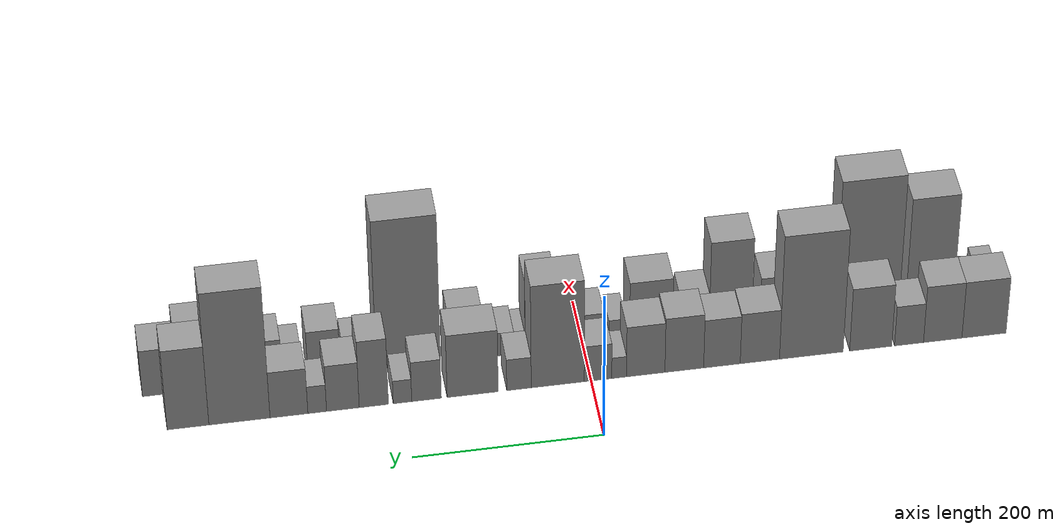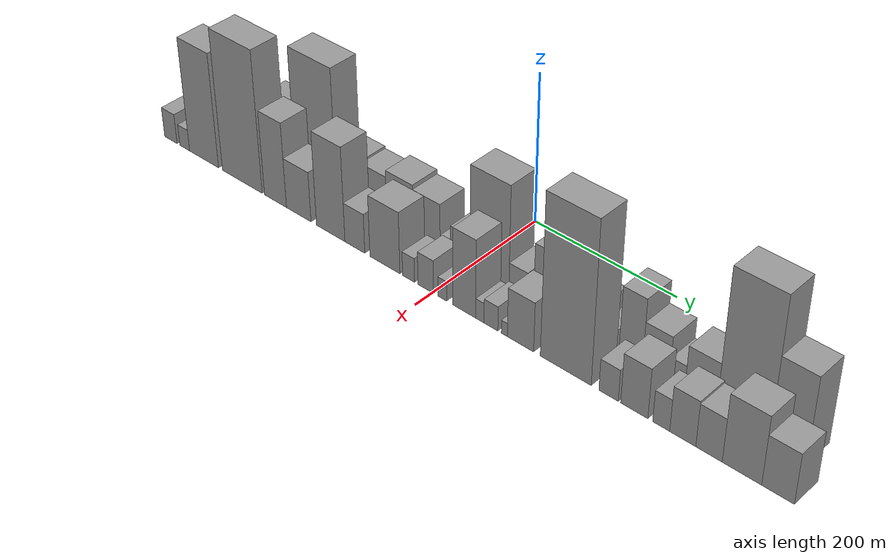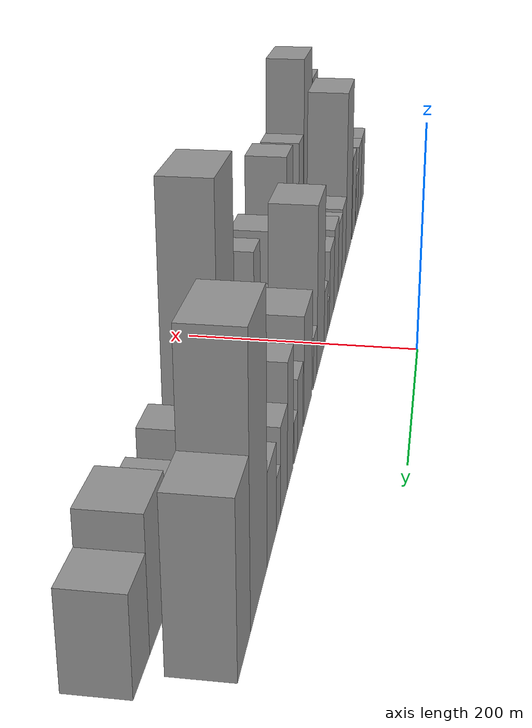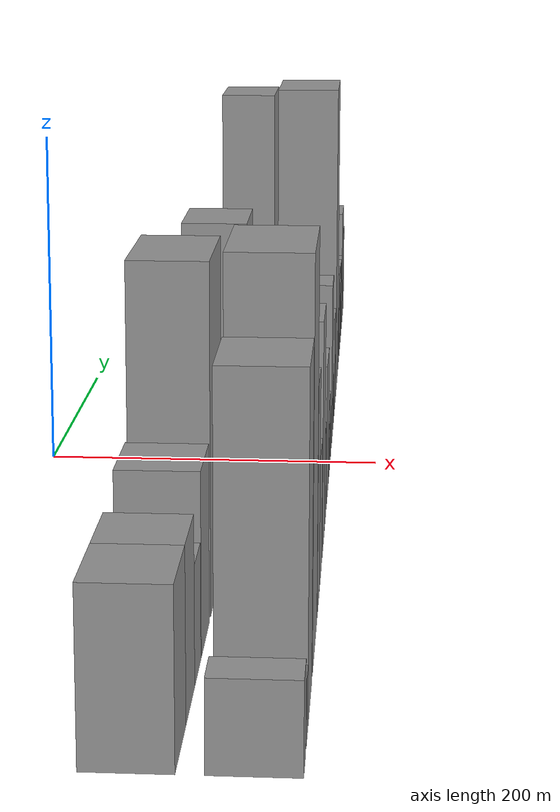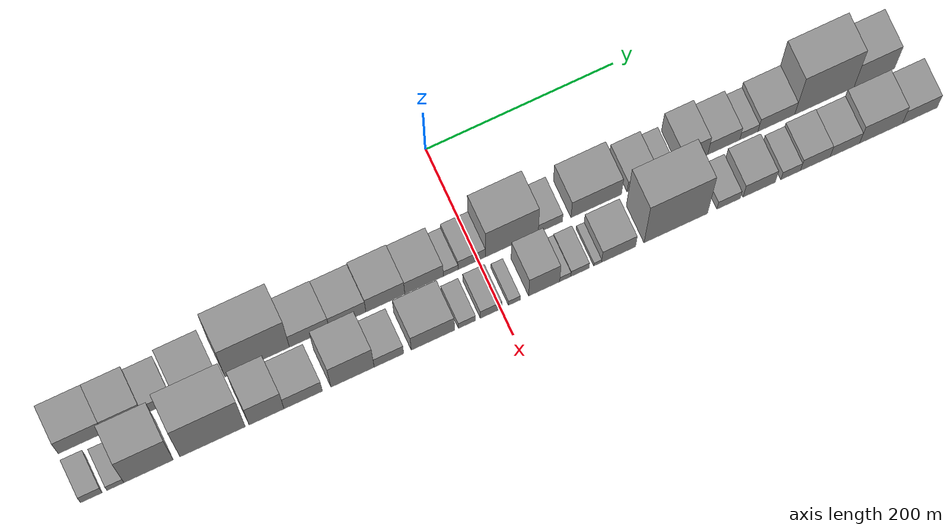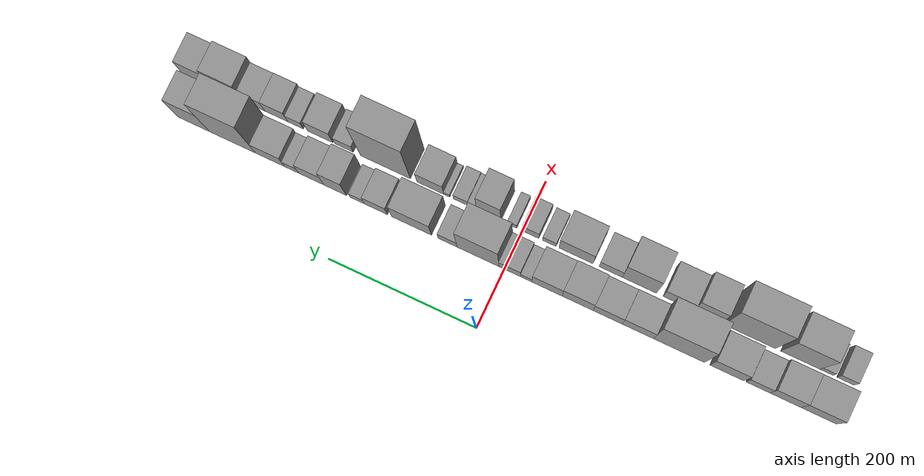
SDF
<sdf version="1.6">
 <world name="default">
  <scene>
   <sky><clouds><speed>12</speed></clouds></sky>
   <ambient>0.4 0.4 0.4 1</ambient>
   <background>0.7 0.7 0.7 1</background>
   <shadows>1</shadows>
  </scene>
  <gravity>0 0 -9.8066</gravity>
  <magnetic_field>6e-06 2.3e-05 -4.2e-05</magnetic_field>
  <physics default="0" name="default_physics" type="ode">
   <ode>
    <solver>
     <type>quick</type>
     <iters>10</iters>
     <sor>1.0</sor>
     <use_dynamic_moi_rescaling>0</use_dynamic_moi_rescaling>
    </solver>
    <constraints>
     <cfm>0</cfm>
     <erp>0.2</erp>
     <contact_max_correcting_vel>100</contact_max_correcting_vel>
     <contact_surface_layer>0.001</contact_surface_layer>
    </constraints>
   </ode>
   <max_step_size>0.004</max_step_size>
   <real_time_factor>1</real_time_factor>
   <real_time_update_rate>250</real_time_update_rate>
  </physics>
  <light name="sun" type="directional">
   <pose>0 0 10 0 0 0</pose>
   <diffuse>0.8 0.8 0.8 1</diffuse>
   <specular>0.2 0.2 0.2 1</specular>
   <attenuation>
    <range>1000</range>
    <constant>0.9</constant>
    <linear>0.01</linear>
    <quadratic>0.001</quadratic>
   </attenuation>
   <direction>-0.5 0.1 -0.9</direction>
  </light>
  <model name="building_1">
   <static>1</static>
   <pose>100.0000 -420.1427 0 0.000000 0.000000 0.000000</pose>
   <link name="link">
    <pose>0 0 40.50 0 0 0</pose>
    <collision name="collision"><geometry><box><size>40.0000 47.7146 81.0000</size></box></geometry></collision>
    <visual name="visual">
     <cast_shadows>0</cast_shadows>
     <geometry><box><size>40.0000 47.7146 81.0000</size></box></geometry>
     <material>
      <script>
       <uri>model://grey_wall/materials/scripts</uri>
       <uri>model://grey_wall/materials/textures</uri>
       <name>vrc/grey_wall</name>
      </script>
     </material>
    </visual>
   </link>
  </model>
  <model name="building_2">
   <static>1</static>
   <pose>100.0000 -375.5671 0 0.000000 0.000000 0.000000</pose>
   <link name="link">
    <pose>0 0 40.50 0 0 0</pose>
    <collision name="collision"><geometry><box><size>40.0000 41.4366 81.0000</size></box></geometry></collision>
    <visual name="visual">
     <cast_shadows>0</cast_shadows>
     <geometry><box><size>40.0000 41.4366 81.0000</size></box></geometry>
     <material>
      <script>
       <uri>model://grey_wall/materials/scripts</uri>
       <uri>model://grey_wall/materials/textures</uri>
       <name>vrc/grey_wall</name>
      </script>
     </material>
    </visual>
   </link>
  </model>
  <model name="building_3">
   <static>1</static>
   <pose>100.0000 -339.2263 0 0.000000 0.000000 0.000000</pose>
   <link name="link">
    <pose>0 0 28.50 0 0 0</pose>
    <collision name="collision"><geometry><box><size>40.0000 31.2451 57.0000</size></box></geometry></collision>
    <visual name="visual">
     <cast_shadows>0</cast_shadows>
     <geometry><box><size>40.0000 31.2451 57.0000</size></box></geometry>
     <material>
      <script>
       <uri>model://grey_wall/materials/scripts</uri>
       <uri>model://grey_wall/materials/textures</uri>
       <name>vrc/grey_wall</name>
      </script>
     </material>
    </visual>
   </link>
  </model>
  <model name="building_4">
   <static>1</static>
   <pose>100.0000 -297.9766 0 0.000000 0.000000 0.000000</pose>
   <link name="link">
    <pose>0 0 45.00 0 0 0</pose>
    <collision name="collision"><geometry><box><size>40.0000 45.2543 90.0000</size></box></geometry></collision>
    <visual name="visual">
     <cast_shadows>0</cast_shadows>
     <geometry><box><size>40.0000 45.2543 90.0000</size></box></geometry>
     <material>
      <script>
       <uri>model://grey_wall/materials/scripts</uri>
       <uri>model://grey_wall/materials/textures</uri>
       <name>vrc/grey_wall</name>
      </script>
     </material>
    </visual>
   </link>
  </model>
  <model name="building_5">
   <static>1</static>
   <pose>100.0000 -234.2413 0 0.000000 0.000000 0.000000</pose>
   <link name="link">
    <pose>0 0 88.50 0 0 0</pose>
    <collision name="collision"><geometry><box><size>40.0000 68.2162 177.0000</size></box></geometry></collision>
    <visual name="visual">
     <cast_shadows>0</cast_shadows>
     <geometry><box><size>40.0000 68.2162 177.0000</size></box></geometry>
     <material>
      <script>
       <uri>model://grey_wall/materials/scripts</uri>
       <uri>model://grey_wall/materials/textures</uri>
       <name>vrc/grey_wall</name>
      </script>
     </material>
    </visual>
   </link>
  </model>
  <model name="building_6">
   <static>1</static>
   <pose>100.0000 -179.1174 0 0.000000 0.000000 0.000000</pose>
   <link name="link">
    <pose>0 0 36.00 0 0 0</pose>
    <collision name="collision"><geometry><box><size>40.0000 42.0318 72.0000</size></box></geometry></collision>
    <visual name="visual">
     <cast_shadows>0</cast_shadows>
     <geometry><box><size>40.0000 42.0318 72.0000</size></box></geometry>
     <material>
      <script>
       <uri>model://grey_wall/materials/scripts</uri>
       <uri>model://grey_wall/materials/textures</uri>
       <name>vrc/grey_wall</name>
      </script>
     </material>
    </visual>
   </link>
  </model>
  <model name="building_7">
   <static>1</static>
   <pose>100.0000 -138.6093 0 0.000000 0.000000 0.000000</pose>
   <link name="link">
    <pose>0 0 34.50 0 0 0</pose>
    <collision name="collision"><geometry><box><size>40.0000 38.9844 69.0000</size></box></geometry></collision>
    <visual name="visual">
     <cast_shadows>0</cast_shadows>
     <geometry><box><size>40.0000 38.9844 69.0000</size></box></geometry>
     <material>
      <script>
       <uri>model://grey_wall/materials/scripts</uri>
       <uri>model://grey_wall/materials/textures</uri>
       <name>vrc/grey_wall</name>
      </script>
     </material>
    </visual>
   </link>
  </model>
  <model name="building_8">
   <static>1</static>
   <pose>100.0000 -98.5088 0 0.000000 0.000000 0.000000</pose>
   <link name="link">
    <pose>0 0 39.00 0 0 0</pose>
    <collision name="collision"><geometry><box><size>40.0000 41.2166 78.0000</size></box></geometry></collision>
    <visual name="visual">
     <cast_shadows>0</cast_shadows>
     <geometry><box><size>40.0000 41.2166 78.0000</size></box></geometry>
     <material>
      <script>
       <uri>model://grey_wall/materials/scripts</uri>
       <uri>model://grey_wall/materials/textures</uri>
       <name>vrc/grey_wall</name>
      </script>
     </material>
    </visual>
   </link>
  </model>
  <model name="building_9">
   <static>1</static>
   <pose>100.0000 -57.4360 0 0.000000 0.000000 0.000000</pose>
   <link name="link">
    <pose>0 0 36.00 0 0 0</pose>
    <collision name="collision"><geometry><box><size>40.0000 40.9290 72.0000</size></box></geometry></collision>
    <visual name="visual">
     <cast_shadows>0</cast_shadows>
     <geometry><box><size>40.0000 40.9290 72.0000</size></box></geometry>
     <material>
      <script>
       <uri>model://grey_wall/materials/scripts</uri>
       <uri>model://grey_wall/materials/textures</uri>
       <name>vrc/grey_wall</name>
      </script>
     </material>
    </visual>
   </link>
  </model>
  <model name="building_10">
   <static>1</static>
   <pose>100.0000 -29.1819 0 0.000000 0.000000 0.000000</pose>
   <link name="link">
    <pose>0 0 15.00 0 0 0</pose>
    <collision name="collision"><geometry><box><size>40.0000 15.5792 30.0000</size></box></geometry></collision>
    <visual name="visual">
     <cast_shadows>0</cast_shadows>
     <geometry><box><size>40.0000 15.5792 30.0000</size></box></geometry>
     <material>
      <script>
       <uri>model://grey_wall/materials/scripts</uri>
       <uri>model://grey_wall/materials/textures</uri>
       <name>vrc/grey_wall</name>
      </script>
     </material>
    </visual>
   </link>
  </model>
  <model name="building_11">
   <static>1</static>
   <pose>100.0000 -6.8319 0 0.000000 0.000000 0.000000</pose>
   <link name="link">
    <pose>0 0 25.50 0 0 0</pose>
    <collision name="collision"><geometry><box><size>40.0000 29.1208 51.0000</size></box></geometry></collision>
    <visual name="visual">
     <cast_shadows>0</cast_shadows>
     <geometry><box><size>40.0000 29.1208 51.0000</size></box></geometry>
     <material>
      <script>
       <uri>model://grey_wall/materials/scripts</uri>
       <uri>model://grey_wall/materials/textures</uri>
       <name>vrc/grey_wall</name>
      </script>
     </material>
    </visual>
   </link>
  </model>
  <model name="building_12">
   <static>1</static>
   <pose>100.0000 35.7936 0 0.000000 0.000000 0.000000</pose>
   <link name="link">
    <pose>0 0 73.50 0 0 0</pose>
    <collision name="collision"><geometry><box><size>40.0000 56.1301 147.0000</size></box></geometry></collision>
    <visual name="visual">
     <cast_shadows>0</cast_shadows>
     <geometry><box><size>40.0000 56.1301 147.0000</size></box></geometry>
     <material>
      <script>
       <uri>model://grey_wall/materials/scripts</uri>
       <uri>model://grey_wall/materials/textures</uri>
       <name>vrc/grey_wall</name>
      </script>
     </material>
    </visual>
   </link>
  </model>
  <model name="building_13">
   <static>1</static>
   <pose>100.0000 76.7831 0 0.000000 0.000000 0.000000</pose>
   <link name="link">
    <pose>0 0 22.50 0 0 0</pose>
    <collision name="collision"><geometry><box><size>40.0000 25.8488 45.0000</size></box></geometry></collision>
    <visual name="visual">
     <cast_shadows>0</cast_shadows>
     <geometry><box><size>40.0000 25.8488 45.0000</size></box></geometry>
     <material>
      <script>
       <uri>model://grey_wall/materials/scripts</uri>
       <uri>model://grey_wall/materials/textures</uri>
       <name>vrc/grey_wall</name>
      </script>
     </material>
    </visual>
   </link>
  </model>
  <model name="building_14">
   <static>1</static>
   <pose>100.0000 125.6240 0 0.000000 0.000000 0.000000</pose>
   <link name="link">
    <pose>0 0 45.00 0 0 0</pose>
    <collision name="collision"><geometry><box><size>40.0000 53.8330 90.0000</size></box></geometry></collision>
    <visual name="visual">
     <cast_shadows>0</cast_shadows>
     <geometry><box><size>40.0000 53.8330 90.0000</size></box></geometry>
     <material>
      <script>
       <uri>model://grey_wall/materials/scripts</uri>
       <uri>model://grey_wall/materials/textures</uri>
       <name>vrc/grey_wall</name>
      </script>
     </material>
    </visual>
   </link>
  </model>
  <model name="building_15">
   <static>1</static>
   <pose>100.0000 174.1164 0 0.000000 0.000000 0.000000</pose>
   <link name="link">
    <pose>0 0 28.50 0 0 0</pose>
    <collision name="collision"><geometry><box><size>40.0000 31.1519 57.0000</size></box></geometry></collision>
    <visual name="visual">
     <cast_shadows>0</cast_shadows>
     <geometry><box><size>40.0000 31.1519 57.0000</size></box></geometry>
     <material>
      <script>
       <uri>model://grey_wall/materials/scripts</uri>
       <uri>model://grey_wall/materials/textures</uri>
       <name>vrc/grey_wall</name>
      </script>
     </material>
    </visual>
   </link>
  </model>
  <model name="building_16">
   <static>1</static>
   <pose>100.0000 199.3992 0 0.000000 0.000000 0.000000</pose>
   <link name="link">
    <pose>0 0 16.50 0 0 0</pose>
    <collision name="collision"><geometry><box><size>40.0000 19.4137 33.0000</size></box></geometry></collision>
    <visual name="visual">
     <cast_shadows>0</cast_shadows>
     <geometry><box><size>40.0000 19.4137 33.0000</size></box></geometry>
     <material>
      <script>
       <uri>model://grey_wall/materials/scripts</uri>
       <uri>model://grey_wall/materials/textures</uri>
       <name>vrc/grey_wall</name>
      </script>
     </material>
    </visual>
   </link>
  </model>
  <model name="building_17">
   <static>1</static>
   <pose>100.0000 229.4084 0 0.000000 0.000000 0.000000</pose>
   <link name="link">
    <pose>0 0 48.00 0 0 0</pose>
    <collision name="collision"><geometry><box><size>40.0000 30.6047 96.0000</size></box></geometry></collision>
    <visual name="visual">
     <cast_shadows>0</cast_shadows>
     <geometry><box><size>40.0000 30.6047 96.0000</size></box></geometry>
     <material>
      <script>
       <uri>model://grey_wall/materials/scripts</uri>
       <uri>model://grey_wall/materials/textures</uri>
       <name>vrc/grey_wall</name>
      </script>
     </material>
    </visual>
   </link>
  </model>
  <model name="building_18">
   <static>1</static>
   <pose>100.0000 261.8098 0 0.000000 0.000000 0.000000</pose>
   <link name="link">
    <pose>0 0 33.00 0 0 0</pose>
    <collision name="collision"><geometry><box><size>40.0000 34.1980 66.0000</size></box></geometry></collision>
    <visual name="visual">
     <cast_shadows>0</cast_shadows>
     <geometry><box><size>40.0000 34.1980 66.0000</size></box></geometry>
     <material>
      <script>
       <uri>model://grey_wall/materials/scripts</uri>
       <uri>model://grey_wall/materials/textures</uri>
       <name>vrc/grey_wall</name>
      </script>
     </material>
    </visual>
   </link>
  </model>
  <model name="building_19">
   <static>1</static>
   <pose>100.0000 288.6659 0 0.000000 0.000000 0.000000</pose>
   <link name="link">
    <pose>0 0 19.50 0 0 0</pose>
    <collision name="collision"><geometry><box><size>40.0000 19.5142 39.0000</size></box></geometry></collision>
    <visual name="visual">
     <cast_shadows>0</cast_shadows>
     <geometry><box><size>40.0000 19.5142 39.0000</size></box></geometry>
     <material>
      <script>
       <uri>model://grey_wall/materials/scripts</uri>
       <uri>model://grey_wall/materials/textures</uri>
       <name>vrc/grey_wall</name>
      </script>
     </material>
    </visual>
   </link>
  </model>
  <model name="building_20">
   <static>1</static>
   <pose>100.0000 318.1490 0 0.000000 0.000000 0.000000</pose>
   <link name="link">
    <pose>0 0 33.00 0 0 0</pose>
    <collision name="collision"><geometry><box><size>40.0000 39.4521 66.0000</size></box></geometry></collision>
    <visual name="visual">
     <cast_shadows>0</cast_shadows>
     <geometry><box><size>40.0000 39.4521 66.0000</size></box></geometry>
     <material>
      <script>
       <uri>model://grey_wall/materials/scripts</uri>
       <uri>model://grey_wall/materials/textures</uri>
       <name>vrc/grey_wall</name>
      </script>
     </material>
    </visual>
   </link>
  </model>
  <model name="building_21">
   <static>1</static>
   <pose>100.0000 369.6639 0 0.000000 0.000000 0.000000</pose>
   <link name="link">
    <pose>0 0 94.50 0 0 0</pose>
    <collision name="collision"><geometry><box><size>40.0000 63.5777 189.0000</size></box></geometry></collision>
    <visual name="visual">
     <cast_shadows>0</cast_shadows>
     <geometry><box><size>40.0000 63.5777 189.0000</size></box></geometry>
     <material>
      <script>
       <uri>model://grey_wall/materials/scripts</uri>
       <uri>model://grey_wall/materials/textures</uri>
       <name>vrc/grey_wall</name>
      </script>
     </material>
    </visual>
   </link>
  </model>
  <model name="building_22">
   <static>1</static>
   <pose>100.0000 423.1620 0 0.000000 0.000000 0.000000</pose>
   <link name="link">
    <pose>0 0 57.00 0 0 0</pose>
    <collision name="collision"><geometry><box><size>40.0000 43.4184 114.0000</size></box></geometry></collision>
    <visual name="visual">
     <cast_shadows>0</cast_shadows>
     <geometry><box><size>40.0000 43.4184 114.0000</size></box></geometry>
     <material>
      <script>
       <uri>model://grey_wall/materials/scripts</uri>
       <uri>model://grey_wall/materials/textures</uri>
       <name>vrc/grey_wall</name>
      </script>
     </material>
    </visual>
   </link>
  </model>
  <model name="building_23">
   <static>1</static>
   <pose>152.0000 -432.6067 0 0.000000 0.000000 0.000000</pose>
   <link name="link">
    <pose>0 0 21.00 0 0 0</pose>
    <collision name="collision"><geometry><box><size>40.0000 22.7866 42.0000</size></box></geometry></collision>
    <visual name="visual">
     <cast_shadows>0</cast_shadows>
     <geometry><box><size>40.0000 22.7866 42.0000</size></box></geometry>
     <material>
      <script>
       <uri>model://grey_wall/materials/scripts</uri>
       <uri>model://grey_wall/materials/textures</uri>
       <name>vrc/grey_wall</name>
      </script>
     </material>
    </visual>
   </link>
  </model>
  <model name="building_24">
   <static>1</static>
   <pose>152.0000 -407.3194 0 0.000000 0.000000 0.000000</pose>
   <link name="link">
    <pose>0 0 15.00 0 0 0</pose>
    <collision name="collision"><geometry><box><size>40.0000 17.7880 30.0000</size></box></geometry></collision>
    <visual name="visual">
     <cast_shadows>0</cast_shadows>
     <geometry><box><size>40.0000 17.7880 30.0000</size></box></geometry>
     <material>
      <script>
       <uri>model://grey_wall/materials/scripts</uri>
       <uri>model://grey_wall/materials/textures</uri>
       <name>vrc/grey_wall</name>
      </script>
     </material>
    </visual>
   </link>
  </model>
  <model name="building_25">
   <static>1</static>
   <pose>152.0000 -372.4375 0 0.000000 0.000000 0.000000</pose>
   <link name="link">
    <pose>0 0 79.50 0 0 0</pose>
    <collision name="collision"><geometry><box><size>40.0000 51.9756 159.0000</size></box></geometry></collision>
    <visual name="visual">
     <cast_shadows>0</cast_shadows>
     <geometry><box><size>40.0000 51.9756 159.0000</size></box></geometry>
     <material>
      <script>
       <uri>model://grey_wall/materials/scripts</uri>
       <uri>model://grey_wall/materials/textures</uri>
       <name>vrc/grey_wall</name>
      </script>
     </material>
    </visual>
   </link>
  </model>
  <model name="building_26">
   <static>1</static>
   <pose>152.0000 -305.0122 0 0.000000 0.000000 0.000000</pose>
   <link name="link">
    <pose>0 0 97.50 0 0 0</pose>
    <collision name="collision"><geometry><box><size>40.0000 68.8751 195.0000</size></box></geometry></collision>
    <visual name="visual">
     <cast_shadows>0</cast_shadows>
     <geometry><box><size>40.0000 68.8751 195.0000</size></box></geometry>
     <material>
      <script>
       <uri>model://grey_wall/materials/scripts</uri>
       <uri>model://grey_wall/materials/textures</uri>
       <name>vrc/grey_wall</name>
      </script>
     </material>
    </visual>
   </link>
  </model>
  <model name="building_27">
   <static>1</static>
   <pose>152.0000 -248.1202 0 0.000000 0.000000 0.000000</pose>
   <link name="link">
    <pose>0 0 58.50 0 0 0</pose>
    <collision name="collision"><geometry><box><size>40.0000 36.9089 117.0000</size></box></geometry></collision>
    <visual name="visual">
     <cast_shadows>0</cast_shadows>
     <geometry><box><size>40.0000 36.9089 117.0000</size></box></geometry>
     <material>
      <script>
       <uri>model://grey_wall/materials/scripts</uri>
       <uri>model://grey_wall/materials/textures</uri>
       <name>vrc/grey_wall</name>
      </script>
     </material>
    </visual>
   </link>
  </model>
  <model name="building_28">
   <static>1</static>
   <pose>152.0000 -209.4073 0 0.000000 0.000000 0.000000</pose>
   <link name="link">
    <pose>0 0 34.50 0 0 0</pose>
    <collision name="collision"><geometry><box><size>40.0000 40.5168 69.0000</size></box></geometry></collision>
    <visual name="visual">
     <cast_shadows>0</cast_shadows>
     <geometry><box><size>40.0000 40.5168 69.0000</size></box></geometry>
     <material>
      <script>
       <uri>model://grey_wall/materials/scripts</uri>
       <uri>model://grey_wall/materials/textures</uri>
       <name>vrc/grey_wall</name>
      </script>
     </material>
    </visual>
   </link>
  </model>
  <model name="building_29">
   <static>1</static>
   <pose>152.0000 -157.2756 0 0.000000 0.000000 0.000000</pose>
   <link name="link">
    <pose>0 0 64.50 0 0 0</pose>
    <collision name="collision"><geometry><box><size>40.0000 45.7466 129.0000</size></box></geometry></collision>
    <visual name="visual">
     <cast_shadows>0</cast_shadows>
     <geometry><box><size>40.0000 45.7466 129.0000</size></box></geometry>
     <material>
      <script>
       <uri>model://grey_wall/materials/scripts</uri>
       <uri>model://grey_wall/materials/textures</uri>
       <name>vrc/grey_wall</name>
      </script>
     </material>
    </visual>
   </link>
  </model>
  <model name="building_30">
   <static>1</static>
   <pose>152.0000 -118.7785 0 0.000000 0.000000 0.000000</pose>
   <link name="link">
    <pose>0 0 27.00 0 0 0</pose>
    <collision name="collision"><geometry><box><size>40.0000 31.2476 54.0000</size></box></geometry></collision>
    <visual name="visual">
     <cast_shadows>0</cast_shadows>
     <geometry><box><size>40.0000 31.2476 54.0000</size></box></geometry>
     <material>
      <script>
       <uri>model://grey_wall/materials/scripts</uri>
       <uri>model://grey_wall/materials/textures</uri>
       <name>vrc/grey_wall</name>
      </script>
     </material>
    </visual>
   </link>
  </model>
  <model name="building_31">
   <static>1</static>
   <pose>152.0000 -72.1550 0 0.000000 0.000000 0.000000</pose>
   <link name="link">
    <pose>0 0 42.00 0 0 0</pose>
    <collision name="collision"><geometry><box><size>40.0000 45.9994 84.0000</size></box></geometry></collision>
    <visual name="visual">
     <cast_shadows>0</cast_shadows>
     <geometry><box><size>40.0000 45.9994 84.0000</size></box></geometry>
     <material>
      <script>
       <uri>model://grey_wall/materials/scripts</uri>
       <uri>model://grey_wall/materials/textures</uri>
       <name>vrc/grey_wall</name>
      </script>
     </material>
    </visual>
   </link>
  </model>
  <model name="building_32">
   <static>1</static>
   <pose>152.0000 -36.0433 0 0.000000 0.000000 0.000000</pose>
   <link name="link">
    <pose>0 0 16.50 0 0 0</pose>
    <collision name="collision"><geometry><box><size>40.0000 18.2240 33.0000</size></box></geometry></collision>
    <visual name="visual">
     <cast_shadows>0</cast_shadows>
     <geometry><box><size>40.0000 18.2240 33.0000</size></box></geometry>
     <material>
      <script>
       <uri>model://grey_wall/materials/scripts</uri>
       <uri>model://grey_wall/materials/textures</uri>
       <name>vrc/grey_wall</name>
      </script>
     </material>
    </visual>
   </link>
  </model>
  <model name="building_33">
   <static>1</static>
   <pose>152.0000 -10.4829 0 0.000000 0.000000 0.000000</pose>
   <link name="link">
    <pose>0 0 22.50 0 0 0</pose>
    <collision name="collision"><geometry><box><size>40.0000 22.8967 45.0000</size></box></geometry></collision>
    <visual name="visual">
     <cast_shadows>0</cast_shadows>
     <geometry><box><size>40.0000 22.8967 45.0000</size></box></geometry>
     <material>
      <script>
       <uri>model://grey_wall/materials/scripts</uri>
       <uri>model://grey_wall/materials/textures</uri>
       <name>vrc/grey_wall</name>
      </script>
     </material>
    </visual>
   </link>
  </model>
  <model name="building_34">
   <static>1</static>
   <pose>152.0000 14.1897 0 0.000000 0.000000 0.000000</pose>
   <link name="link">
    <pose>0 0 13.50 0 0 0</pose>
    <collision name="collision"><geometry><box><size>40.0000 12.4485 27.0000</size></box></geometry></collision>
    <visual name="visual">
     <cast_shadows>0</cast_shadows>
     <geometry><box><size>40.0000 12.4485 27.0000</size></box></geometry>
     <material>
      <script>
       <uri>model://grey_wall/materials/scripts</uri>
       <uri>model://grey_wall/materials/textures</uri>
       <name>vrc/grey_wall</name>
      </script>
     </material>
    </visual>
   </link>
  </model>
  <model name="building_35">
   <static>1</static>
   <pose>152.0000 45.8595 0 0.000000 0.000000 0.000000</pose>
   <link name="link">
    <pose>0 0 52.50 0 0 0</pose>
    <collision name="collision"><geometry><box><size>40.0000 32.8911 105.0000</size></box></geometry></collision>
    <visual name="visual">
     <cast_shadows>0</cast_shadows>
     <geometry><box><size>40.0000 32.8911 105.0000</size></box></geometry>
     <material>
      <script>
       <uri>model://grey_wall/materials/scripts</uri>
       <uri>model://grey_wall/materials/textures</uri>
       <name>vrc/grey_wall</name>
      </script>
     </material>
    </visual>
   </link>
  </model>
  <model name="building_36">
   <static>1</static>
   <pose>152.0000 68.2751 0 0.000000 0.000000 0.000000</pose>
   <link name="link">
    <pose>0 0 13.50 0 0 0</pose>
    <collision name="collision"><geometry><box><size>40.0000 11.9401 27.0000</size></box></geometry></collision>
    <visual name="visual">
     <cast_shadows>0</cast_shadows>
     <geometry><box><size>40.0000 11.9401 27.0000</size></box></geometry>
     <material>
      <script>
       <uri>model://grey_wall/materials/scripts</uri>
       <uri>model://grey_wall/materials/textures</uri>
       <name>vrc/grey_wall</name>
      </script>
     </material>
    </visual>
   </link>
  </model>
  <model name="building_37">
   <static>1</static>
   <pose>152.0000 83.9401 0 0.000000 0.000000 0.000000</pose>
   <link name="link">
    <pose>0 0 16.50 0 0 0</pose>
    <collision name="collision"><geometry><box><size>40.0000 19.3898 33.0000</size></box></geometry></collision>
    <visual name="visual">
     <cast_shadows>0</cast_shadows>
     <geometry><box><size>40.0000 19.3898 33.0000</size></box></geometry>
     <material>
      <script>
       <uri>model://grey_wall/materials/scripts</uri>
       <uri>model://grey_wall/materials/textures</uri>
       <name>vrc/grey_wall</name>
      </script>
     </material>
    </visual>
   </link>
  </model>
  <model name="building_38">
   <static>1</static>
   <pose>152.0000 102.7569 0 0.000000 0.000000 0.000000</pose>
   <link name="link">
    <pose>0 0 9.00 0 0 0</pose>
    <collision name="collision"><geometry><box><size>40.0000 8.2438 18.0000</size></box></geometry></collision>
    <visual name="visual">
     <cast_shadows>0</cast_shadows>
     <geometry><box><size>40.0000 8.2438 18.0000</size></box></geometry>
     <material>
      <script>
       <uri>model://grey_wall/materials/scripts</uri>
       <uri>model://grey_wall/materials/textures</uri>
       <name>vrc/grey_wall</name>
      </script>
     </material>
    </visual>
   </link>
  </model>
  <model name="building_39">
   <static>1</static>
   <pose>152.0000 125.0118 0 0.000000 0.000000 0.000000</pose>
   <link name="link">
    <pose>0 0 33.00 0 0 0</pose>
    <collision name="collision"><geometry><box><size>40.0000 36.2661 66.0000</size></box></geometry></collision>
    <visual name="visual">
     <cast_shadows>0</cast_shadows>
     <geometry><box><size>40.0000 36.2661 66.0000</size></box></geometry>
     <material>
      <script>
       <uri>model://grey_wall/materials/scripts</uri>
       <uri>model://grey_wall/materials/textures</uri>
       <name>vrc/grey_wall</name>
      </script>
     </material>
    </visual>
   </link>
  </model>
  <model name="building_40">
   <static>1</static>
   <pose>152.0000 186.0160 0 0.000000 0.000000 0.000000</pose>
   <link name="link">
    <pose>0 0 106.50 0 0 0</pose>
    <collision name="collision"><geometry><box><size>40.0000 67.7422 213.0000</size></box></geometry></collision>
    <visual name="visual">
     <cast_shadows>0</cast_shadows>
     <geometry><box><size>40.0000 67.7422 213.0000</size></box></geometry>
     <material>
      <script>
       <uri>model://grey_wall/materials/scripts</uri>
       <uri>model://grey_wall/materials/textures</uri>
       <name>vrc/grey_wall</name>
      </script>
     </material>
    </visual>
   </link>
  </model>
  <model name="building_41">
   <static>1</static>
   <pose>152.0000 242.3650 0 0.000000 0.000000 0.000000</pose>
   <link name="link">
    <pose>0 0 21.00 0 0 0</pose>
    <collision name="collision"><geometry><box><size>40.0000 24.9558 42.0000</size></box></geometry></collision>
    <visual name="visual">
     <cast_shadows>0</cast_shadows>
     <geometry><box><size>40.0000 24.9558 42.0000</size></box></geometry>
     <material>
      <script>
       <uri>model://grey_wall/materials/scripts</uri>
       <uri>model://grey_wall/materials/textures</uri>
       <name>vrc/grey_wall</name>
      </script>
     </material>
    </visual>
   </link>
  </model>
  <model name="building_42">
   <static>1</static>
   <pose>152.0000 275.0133 0 0.000000 0.000000 0.000000</pose>
   <link name="link">
    <pose>0 0 33.00 0 0 0</pose>
    <collision name="collision"><geometry><box><size>40.0000 34.3407 66.0000</size></box></geometry></collision>
    <visual name="visual">
     <cast_shadows>0</cast_shadows>
     <geometry><box><size>40.0000 34.3407 66.0000</size></box></geometry>
     <material>
      <script>
       <uri>model://grey_wall/materials/scripts</uri>
       <uri>model://grey_wall/materials/textures</uri>
       <name>vrc/grey_wall</name>
      </script>
     </material>
    </visual>
   </link>
  </model>
  <model name="building_43">
   <static>1</static>
   <pose>152.0000 308.6903 0 0.000000 0.000000 0.000000</pose>
   <link name="link">
    <pose>0 0 21.00 0 0 0</pose>
    <collision name="collision"><geometry><box><size>40.0000 21.0133 42.0000</size></box></geometry></collision>
    <visual name="visual">
     <cast_shadows>0</cast_shadows>
     <geometry><box><size>40.0000 21.0133 42.0000</size></box></geometry>
     <material>
      <script>
       <uri>model://grey_wall/materials/scripts</uri>
       <uri>model://grey_wall/materials/textures</uri>
       <name>vrc/grey_wall</name>
      </script>
     </material>
    </visual>
   </link>
  </model>
  <model name="building_44">
   <static>1</static>
   <pose>152.0000 335.0728 0 0.000000 0.000000 0.000000</pose>
   <link name="link">
    <pose>0 0 30.00 0 0 0</pose>
    <collision name="collision"><geometry><box><size>40.0000 31.7519 60.0000</size></box></geometry></collision>
    <visual name="visual">
     <cast_shadows>0</cast_shadows>
     <geometry><box><size>40.0000 31.7519 60.0000</size></box></geometry>
     <material>
      <script>
       <uri>model://grey_wall/materials/scripts</uri>
       <uri>model://grey_wall/materials/textures</uri>
       <name>vrc/grey_wall</name>
      </script>
     </material>
    </visual>
   </link>
  </model>
  <model name="building_45">
   <static>1</static>
   <pose>152.0000 366.7379 0 0.000000 0.000000 0.000000</pose>
   <link name="link">
    <pose>0 0 28.50 0 0 0</pose>
    <collision name="collision"><geometry><box><size>40.0000 31.5783 57.0000</size></box></geometry></collision>
    <visual name="visual">
     <cast_shadows>0</cast_shadows>
     <geometry><box><size>40.0000 31.5783 57.0000</size></box></geometry>
     <material>
      <script>
       <uri>model://grey_wall/materials/scripts</uri>
       <uri>model://grey_wall/materials/textures</uri>
       <name>vrc/grey_wall</name>
      </script>
     </material>
    </visual>
   </link>
  </model>
  <model name="building_46">
   <static>1</static>
   <pose>152.0000 405.5123 0 0.000000 0.000000 0.000000</pose>
   <link name="link">
    <pose>0 0 45.00 0 0 0</pose>
    <collision name="collision"><geometry><box><size>40.0000 45.9705 90.0000</size></box></geometry></collision>
    <visual name="visual">
     <cast_shadows>0</cast_shadows>
     <geometry><box><size>40.0000 45.9705 90.0000</size></box></geometry>
     <material>
      <script>
       <uri>model://grey_wall/materials/scripts</uri>
       <uri>model://grey_wall/materials/textures</uri>
       <name>vrc/grey_wall</name>
      </script>
     </material>
    </visual>
   </link>
  </model>
  <model name="building_47">
   <static>1</static>
   <pose>152.0000 447.1226 0 0.000000 0.000000 0.000000</pose>
   <link name="link">
    <pose>0 0 33.00 0 0 0</pose>
    <collision name="collision"><geometry><box><size>40.0000 37.2501 66.0000</size></box></geometry></collision>
    <visual name="visual">
     <cast_shadows>0</cast_shadows>
     <geometry><box><size>40.0000 37.2501 66.0000</size></box></geometry>
     <material>
      <script>
       <uri>model://grey_wall/materials/scripts</uri>
       <uri>model://grey_wall/materials/textures</uri>
       <name>vrc/grey_wall</name>
      </script>
     </material>
    </visual>
   </link>
  </model>
 </world>
</sdf>
